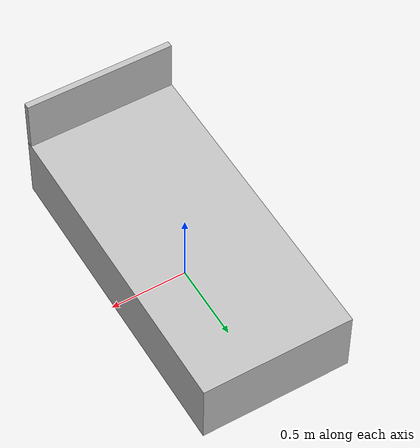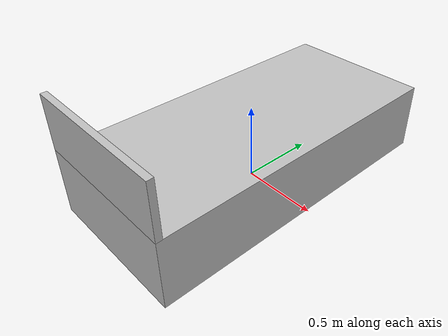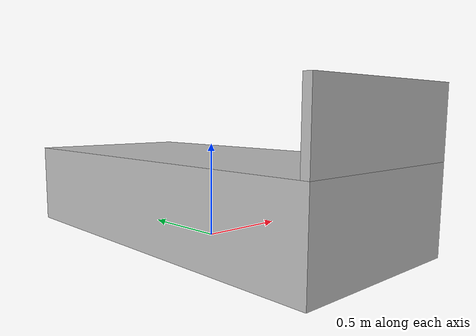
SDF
<?xml version="1.0"?>
<sdf version="1.6">
  <model name="rwc2016/bed_frame">
    <link name="1_link">
      <collision name="1_col">
        <geometry>
          <box>
            <size>0.972 2.063 0.445</size>
          </box>
        </geometry>
      </collision>
      <visual name="1_vis">
        <geometry>
          <box>
            <size>0.972 2.063 0.445</size>
          </box>
        </geometry>
        <material>
          <ambient>0.75 0.75 0.75 1</ambient>
        </material>
      </visual>
      <pose>0 0 0.225 0 0 0</pose>
    </link>
    <link name="2_link">
      <collision name="2_col">
        <geometry>
          <box>
            <size>0.972 0.04 0.355</size>
          </box>
        </geometry>
      </collision>
      <visual name="2_vis">
        <geometry>
          <box>
            <size>0.972 0.04 0.355</size>
          </box>
        </geometry>
        <material>
          <ambient>0.75 0.75 0.75 1</ambient>
        </material>
      </visual>
      <pose>0 -1.0115 0.6225 0 0 0</pose>
    </link>
    <link name="in_front_of">
      <virtual_volume name="in_front_of_vv">
        <geometry>
          <box>
            <size>2.172 2.0 0.01</size>
          </box>
        </geometry>
        <pose>0.0 0.5 0.005 0 0 0</pose>
      </virtual_volume>
    </link>
    <static>true</static>
  </model>
</sdf>
